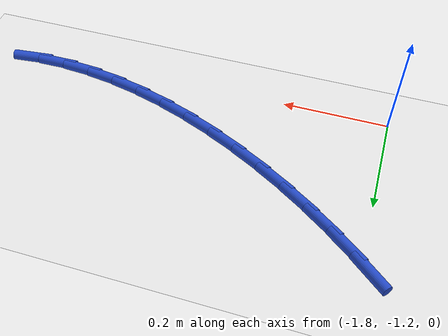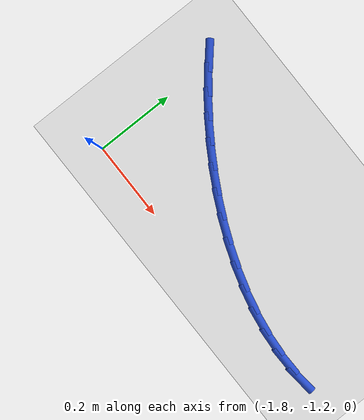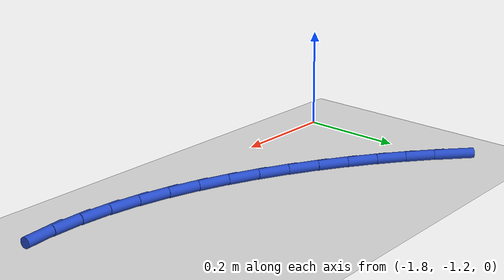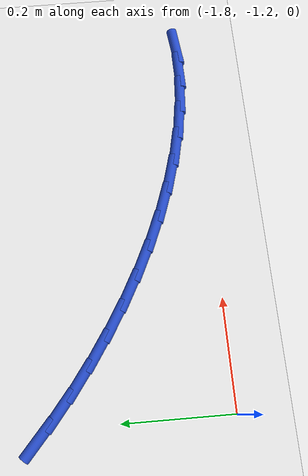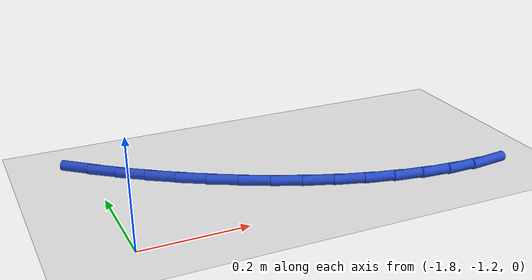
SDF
<sdf version="1.6">
 <world name="default">
  <model name="ground_plane">
   <static>1</static>
   <link name="link">
    <collision name="collision">
     <geometry><plane><normal>0 0 1</normal><size>100 100</size></plane></geometry>
     <surface><friction><ode><mu>100</mu><mu2>50</mu2></ode></friction></surface>
    </collision>
    <visual name="visual">
     <cast_shadows>0</cast_shadows>
     <geometry><plane><normal>0 0 1</normal><size>100 100</size></plane></geometry>
     <material>
      <script><uri>file://media/materials/scripts/gazebo.material</uri><name>Gazebo/WhiteGlow</name></script>
     </material>
    </visual>
   </link>
  </model>
  <model name="line">
   <link name="link_76">
    <pose>-1.8128490185467776 -0.8627130333810097 0.01 0 1.57 -0.7149115388764166</pose>
    <collision name="collision">
     <geometry><cylinder><radius>0.01</radius><length>0.08</length></cylinder></geometry>
    </collision>
    <visual name="visual">
     <material>
      <script><name>Gazebo/Blue</name><uri>file://media/materials/scripts/gazebo.material</uri></script>
     </material>
     <geometry><cylinder><radius>0.01</radius><length>0.08</length></cylinder></geometry>
    </visual>
   </link>
   <link name="link_77">
    <pose>-1.7693909537589003 -0.900439199876206 0.01 0 1.57 -0.667408437097725</pose>
    <collision name="collision">
     <geometry><cylinder><radius>0.01</radius><length>0.08</length></cylinder></geometry>
    </collision>
    <visual name="visual">
     <material>
      <script><name>Gazebo/Blue</name><uri>file://media/materials/scripts/gazebo.material</uri></script>
     </material>
     <geometry><cylinder><radius>0.01</radius><length>0.08</length></cylinder></geometry>
    </visual>
   </link>
   <link name="link_78">
    <pose>-1.7237165825181904 -0.9364326418429922 0.01 0 1.57 -0.6228537389972886</pose>
    <collision name="collision">
     <geometry><cylinder><radius>0.01</radius><length>0.08</length></cylinder></geometry>
    </collision>
    <visual name="visual">
     <material>
      <script><name>Gazebo/Blue</name><uri>file://media/materials/scripts/gazebo.material</uri></script>
     </material>
     <geometry><cylinder><radius>0.01</radius><length>0.08</length></cylinder></geometry>
    </visual>
   </link>
   <link name="link_79">
    <pose>-1.6759401520292312 -0.9707469167122187 0.01 0 1.57 -0.5802940407998387</pose>
    <collision name="collision">
     <geometry><cylinder><radius>0.01</radius><length>0.08</length></cylinder></geometry>
    </collision>
    <visual name="visual">
     <material>
      <script><name>Gazebo/Blue</name><uri>file://media/materials/scripts/gazebo.material</uri></script>
     </material>
     <geometry><cylinder><radius>0.01</radius><length>0.08</length></cylinder></geometry>
    </visual>
   </link>
   <link name="link_80">
    <pose>-1.6262106541616077 -1.0033490178624513 0.01 0 1.57 -0.5369880057560464</pose>
    <collision name="collision">
     <geometry><cylinder><radius>0.01</radius><length>0.08</length></cylinder></geometry>
    </collision>
    <visual name="visual">
     <material>
      <script><name>Gazebo/Blue</name><uri>file://media/materials/scripts/gazebo.material</uri></script>
     </material>
     <geometry><cylinder><radius>0.01</radius><length>0.08</length></cylinder></geometry>
    </visual>
   </link>
   <link name="link_81">
    <pose>-1.5747703158029345 -1.0339736497446337 0.01 0 1.57 -0.4919196062554079</pose>
    <collision name="collision">
     <geometry><cylinder><radius>0.01</radius><length>0.08</length></cylinder></geometry>
    </collision>
    <visual name="visual">
     <material>
      <script><name>Gazebo/Blue</name><uri>file://media/materials/scripts/gazebo.material</uri></script>
     </material>
     <geometry><cylinder><radius>0.01</radius><length>0.08</length></cylinder></geometry>
    </visual>
   </link>
   <link name="link_82">
    <pose>-1.521876840417844 -1.0623169579339224 0.01 0 1.57 -0.44444191761968527</pose>
    <collision name="collision">
     <geometry><cylinder><radius>0.01</radius><length>0.08</length></cylinder></geometry>
    </collision>
    <visual name="visual">
     <material>
      <script><name>Gazebo/Blue</name><uri>file://media/materials/scripts/gazebo.material</uri></script>
     </material>
     <geometry><cylinder><radius>0.01</radius><length>0.08</length></cylinder></geometry>
    </visual>
   </link>
   <link name="link_83">
    <pose>-1.4677879314709672 -1.088075088005477 0.01 0 1.57 -0.3938823081016421</pose>
    <collision name="collision">
     <geometry><cylinder><radius>0.01</radius><length>0.08</length></cylinder></geometry>
    </collision>
    <visual name="visual">
     <material>
      <script><name>Gazebo/Blue</name><uri>file://media/materials/scripts/gazebo.material</uri></script>
     </material>
     <geometry><cylinder><radius>0.01</radius><length>0.08</length></cylinder></geometry>
    </visual>
   </link>
   <link name="link_84">
    <pose>-1.412761292426935 -1.1109441855344557 0.01 0 1.57 -0.33953258491902094</pose>
    <collision name="collision">
     <geometry><cylinder><radius>0.01</radius><length>0.08</length></cylinder></geometry>
    </collision>
    <visual name="visual">
     <material>
      <script><name>Gazebo/Blue</name><uri>file://media/materials/scripts/gazebo.material</uri></script>
     </material>
     <geometry><cylinder><radius>0.01</radius><length>0.08</length></cylinder></geometry>
    </visual>
   </link>
   <link name="link_85">
    <pose>-1.3570546267503776 -1.1306203960960166 0.01 0 1.57 -0.2806471647555916</pose>
    <collision name="collision">
     <geometry><cylinder><radius>0.01</radius><length>0.08</length></cylinder></geometry>
    </collision>
    <visual name="visual">
     <material>
      <script><name>Gazebo/Blue</name><uri>file://media/materials/scripts/gazebo.material</uri></script>
     </material>
     <geometry><cylinder><radius>0.01</radius><length>0.08</length></cylinder></geometry>
    </visual>
   </link>
   <link name="link_86">
    <pose>-1.3009256379059282 -1.1467998652653184 0.01 0 1.57 -0.21645337473414633</pose>
    <collision name="collision">
     <geometry><cylinder><radius>0.01</radius><length>0.08</length></cylinder></geometry>
    </collision>
    <visual name="visual">
     <material>
      <script><name>Gazebo/Blue</name><uri>file://media/materials/scripts/gazebo.material</uri></script>
     </material>
     <geometry><cylinder><radius>0.01</radius><length>0.08</length></cylinder></geometry>
    </visual>
   </link>
   <link name="link_87">
    <pose>-1.2446320293582172 -1.159178738617519 0.01 0 1.57 -0.14618015213805943</pose>
    <collision name="collision">
     <geometry><cylinder><radius>0.01</radius><length>0.08</length></cylinder></geometry>
    </collision>
    <visual name="visual">
     <material>
      <script><name>Gazebo/Blue</name><uri>file://media/materials/scripts/gazebo.material</uri></script>
     </material>
     <geometry><cylinder><radius>0.01</radius><length>0.08</length></cylinder></geometry>
    </visual>
   </link>
   <link name="link_88">
    <pose>-1.1884315045718763 -1.167453161727778 0.01 0 1.57 -0.06911331998046494</pose>
    <collision name="collision">
     <geometry><cylinder><radius>0.01</radius><length>0.08</length></cylinder></geometry>
    </collision>
    <visual name="visual">
     <material>
      <script><name>Gazebo/Blue</name><uri>file://media/materials/scripts/gazebo.material</uri></script>
     </material>
     <geometry><cylinder><radius>0.01</radius><length>0.08</length></cylinder></geometry>
    </visual>
   </link>
   <link name="link_89">
    <pose>-1.1325817670115355 -1.1713192801712529 0.01 0 1.57 0.01531418199371338</pose>
    <collision name="collision">
     <geometry><cylinder><radius>0.01</radius><length>0.08</length></cylinder></geometry>
    </collision>
    <visual name="visual">
     <material>
      <script><name>Gazebo/Blue</name><uri>file://media/materials/scripts/gazebo.material</uri></script>
     </material>
     <geometry><cylinder><radius>0.01</radius><length>0.08</length></cylinder></geometry>
    </visual>
   </link>
   <link name="link_90">
    <pose>-1.0773405201418285 -1.1704732395231028 0.01 0 1.57 0.10739301077382792</pose>
    <collision name="collision">
     <geometry><cylinder><radius>0.01</radius><length>0.08</length></cylinder></geometry>
    </collision>
    <visual name="visual">
     <material>
      <script><name>Gazebo/Blue</name><uri>file://media/materials/scripts/gazebo.material</uri></script>
     </material>
     <geometry><cylinder><radius>0.01</radius><length>0.08</length></cylinder></geometry>
    </visual>
   </link>
  </model>
 </world>
</sdf>
